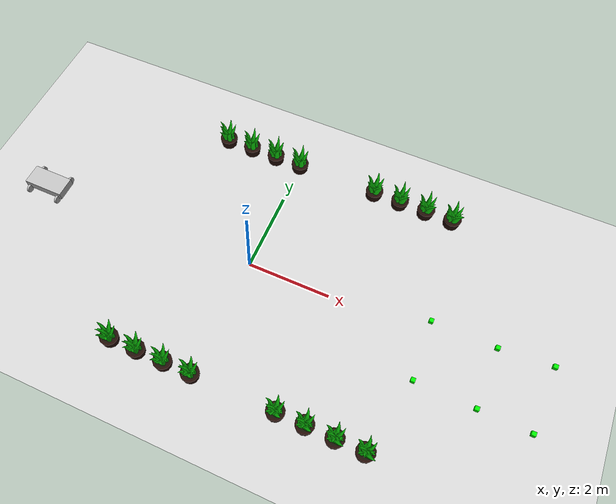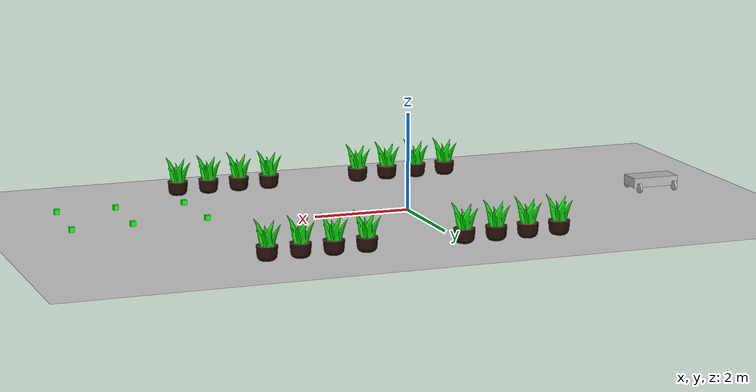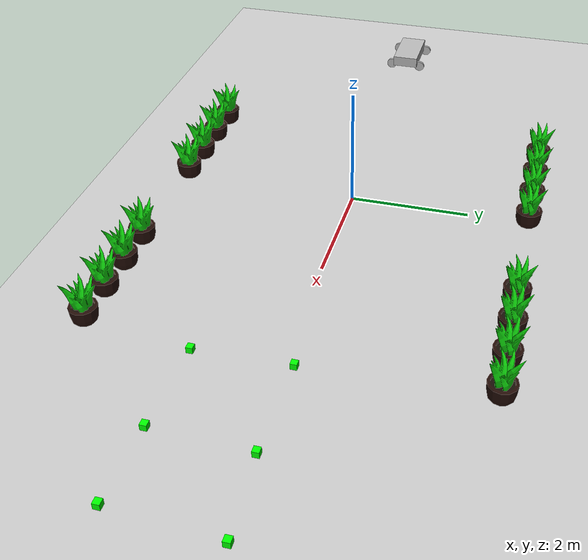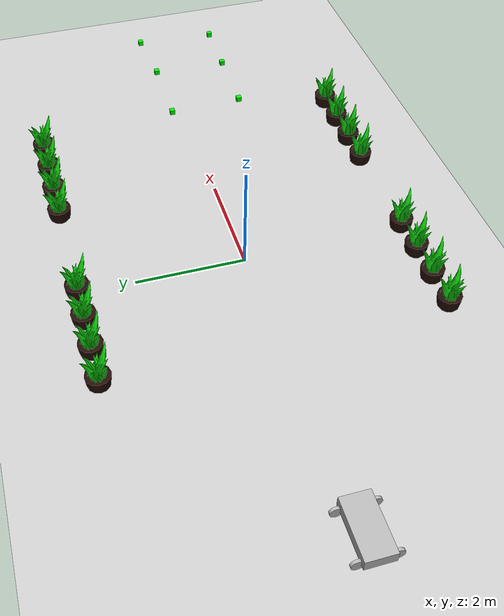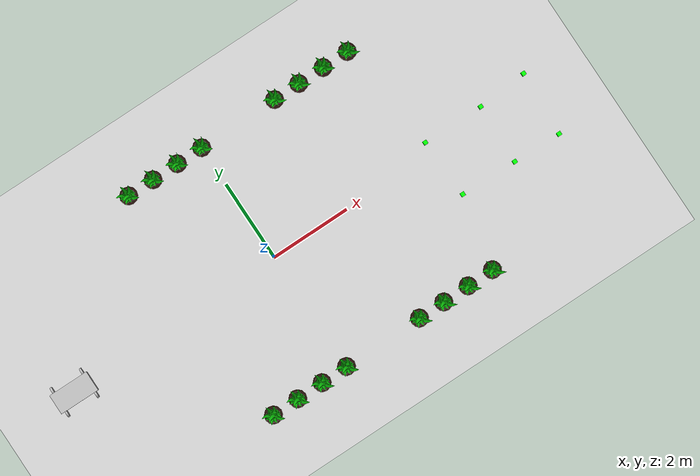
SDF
<sdf version="1.7">
 <world name="default">
  <model name="ground_plane">
   <static>1</static>
   <link name="link">
    <collision name="collision">
     <geometry><plane><normal>0 0 1</normal><size>100 100</size></plane></geometry>
     <surface><friction><ode><mu>100</mu><mu2>50</mu2></ode></friction></surface>
    </collision>
    <visual name="visual">
     <cast_shadows>0</cast_shadows>
     <geometry><plane><normal>0 0 1</normal><size>100 100</size></plane></geometry>
     <material>
      <script><uri>file://media/materials/scripts/gazebo.material</uri><name>Gazebo/Grey</name></script>
     </material>
    </visual>
   </link>
  </model>
  <light name="sun" type="directional">
   <pose>0 0 10 0 -0 0</pose>
   <diffuse>0.8 0.8 0.8 1</diffuse>
   <specular>0.2 0.2 0.2 1</specular>
   <attenuation>
    <range>1000</range>
    <constant>0.9</constant>
    <linear>0.01</linear>
    <quadratic>0.001</quadratic>
   </attenuation>
   <direction>-0.5 0.1 -0.9</direction>
   <spot><inner_angle>0</inner_angle><outer_angle>0</outer_angle><falloff>0</falloff></spot>
  </light>
  <model name="robot">
   <link name="base_link">
    <inertial>
     <mass>5</mass>
     <inertia><ixx>0.1</ixx><ixy>0</ixy><ixz>0</ixz><iyy>0.1</iyy><iyz>0</iyz><izz>0.1</izz></inertia>
    </inertial>
    <collision name="base_link_collision"><geometry><box><size>1 0.5 0.2</size></box></geometry></collision>
    <visual name="base_link_visual"><geometry><box><size>1 0.5 0.2</size></box></geometry></visual>
   </link>
   <joint name="front_left_joint" type="revolute">
    <pose relative_to="base_link">0.4 0.3 -0.1 3.14159 1.57079 3.14159</pose>
    <parent>base_link</parent>
    <child>front_left_wheel</child>
    <axis>
     <xyz>0 0 1</xyz>
     <limit><lower>-1e+16</lower><upper>1e+16</upper></limit>
     <dynamics><spring_reference>0</spring_reference><spring_stiffness>0</spring_stiffness></dynamics>
    </axis>
   </joint>
   <link name="front_left_wheel">
    <pose relative_to="front_left_joint">0 0 0 0 -0 0</pose>
    <inertial>
     <mass>1</mass>
     <inertia><ixx>0.01</ixx><ixy>0</ixy><ixz>0</ixz><iyy>0.01</iyy><iyz>0</iyz><izz>0.01</izz></inertia>
    </inertial>
    <collision name="front_left_wheel_collision">
     <geometry><cylinder><length>0.05</length><radius>0.1</radius></cylinder></geometry>
    </collision>
    <visual name="front_left_wheel_visual">
     <geometry><cylinder><length>0.05</length><radius>0.1</radius></cylinder></geometry>
    </visual>
   </link>
   <joint name="front_right_joint" type="revolute">
    <pose relative_to="base_link">0.4 -0.3 -0.1 3.14159 1.57079 3.14159</pose>
    <parent>base_link</parent>
    <child>front_right_wheel</child>
    <axis>
     <xyz>0 0 1</xyz>
     <limit><lower>-1e+16</lower><upper>1e+16</upper></limit>
     <dynamics><spring_reference>0</spring_reference><spring_stiffness>0</spring_stiffness></dynamics>
    </axis>
   </joint>
   <link name="front_right_wheel">
    <pose relative_to="front_right_joint">0 0 0 0 -0 0</pose>
    <inertial>
     <mass>1</mass>
     <inertia><ixx>0.01</ixx><ixy>0</ixy><ixz>0</ixz><iyy>0.01</iyy><iyz>0</iyz><izz>0.01</izz></inertia>
    </inertial>
    <collision name="front_right_wheel_collision">
     <geometry><cylinder><length>0.05</length><radius>0.1</radius></cylinder></geometry>
    </collision>
    <visual name="front_right_wheel_visual">
     <geometry><cylinder><length>0.05</length><radius>0.1</radius></cylinder></geometry>
    </visual>
   </link>
   <joint name="rear_left_joint" type="revolute">
    <pose relative_to="base_link">-0.4 0.3 -0.1 3.14159 1.57079 3.14159</pose>
    <parent>base_link</parent>
    <child>rear_left_wheel</child>
    <axis>
     <xyz>0 0 1</xyz>
     <limit><lower>-1e+16</lower><upper>1e+16</upper></limit>
     <dynamics><spring_reference>0</spring_reference><spring_stiffness>0</spring_stiffness></dynamics>
    </axis>
   </joint>
   <link name="rear_left_wheel">
    <pose relative_to="rear_left_joint">0 0 0 0 -0 0</pose>
    <inertial>
     <mass>1</mass>
     <inertia><ixx>0.01</ixx><ixy>0</ixy><ixz>0</ixz><iyy>0.01</iyy><iyz>0</iyz><izz>0.01</izz></inertia>
    </inertial>
    <collision name="rear_left_wheel_collision">
     <geometry><cylinder><length>0.05</length><radius>0.1</radius></cylinder></geometry>
    </collision>
    <visual name="rear_left_wheel_visual">
     <geometry><cylinder><length>0.05</length><radius>0.1</radius></cylinder></geometry>
    </visual>
   </link>
   <joint name="rear_right_joint" type="revolute">
    <pose relative_to="base_link">-0.4 -0.3 -0.1 3.14159 1.57079 3.14159</pose>
    <parent>base_link</parent>
    <child>rear_right_wheel</child>
    <axis>
     <xyz>0 0 1</xyz>
     <limit><lower>-1e+16</lower><upper>1e+16</upper></limit>
     <dynamics><spring_reference>0</spring_reference><spring_stiffness>0</spring_stiffness></dynamics>
    </axis>
   </joint>
   <link name="rear_right_wheel">
    <pose relative_to="rear_right_joint">0 0 0 0 -0 0</pose>
    <inertial>
     <mass>1</mass>
     <inertia><ixx>0.01</ixx><ixy>0</ixy><ixz>0</ixz><iyy>0.01</iyy><iyz>0</iyz><izz>0.01</izz></inertia>
    </inertial>
    <collision name="rear_right_wheel_collision">
     <geometry><cylinder><length>0.05</length><radius>0.1</radius></cylinder></geometry>
    </collision>
    <visual name="rear_right_wheel_visual">
     <geometry><cylinder><length>0.05</length><radius>0.1</radius></cylinder></geometry>
    </visual>
   </link>
   <pose>-5.51912 -0.064594 0.2 0 -0 -0.004341</pose>
  </model>
  <model name="water_sensor_1">
   <static>1</static>
   <link name="sensor_link">
    <visual name="visual">
     <geometry><box><size>0.1 0.1 0.1</size></box></geometry>
     <material><ambient>0 1 0 1</ambient></material>
    </visual>
    <collision name="collision"><geometry><box><size>0.1 0.1 0.1</size></box></geometry></collision>
    <sensor name="water_level_sensor" type="logical_camera">
     <always_on>1</always_on>
     <update_rate>10</update_rate>
     <visualize>1</visualize>
     <logical_camera>
      <near>0.1</near>
      <far>1</far>
      <horizontal_fov>1.5708</horizontal_fov>
      <aspect_ratio>1</aspect_ratio>
     </logical_camera>
    </sensor>
   </link>
   <pose>4.39293 -1.19019 0.25 0 -0 0</pose>
  </model>
  <model name="water_sensor_2">
   <static>1</static>
   <link name="sensor_link">
    <visual name="visual">
     <geometry><box><size>0.1 0.1 0.1</size></box></geometry>
     <material><ambient>0 1 0 1</ambient></material>
    </visual>
    <collision name="collision"><geometry><box><size>0.1 0.1 0.1</size></box></geometry></collision>
    <sensor name="water_level_sensor" type="logical_camera">
     <always_on>1</always_on>
     <update_rate>10</update_rate>
     <visualize>1</visualize>
     <logical_camera>
      <near>0.1</near>
      <far>1</far>
      <horizontal_fov>1.5708</horizontal_fov>
      <aspect_ratio>1</aspect_ratio>
     </logical_camera>
    </sensor>
   </link>
   <pose>5.79997 -1.22534 0.25 0 -0 0</pose>
  </model>
  <model name="water_sensor_3">
   <static>1</static>
   <link name="sensor_link">
    <visual name="visual">
     <geometry><box><size>0.1 0.1 0.1</size></box></geometry>
     <material><ambient>0 1 0 1</ambient></material>
    </visual>
    <collision name="collision"><geometry><box><size>0.1 0.1 0.1</size></box></geometry></collision>
    <sensor name="water_level_sensor" type="logical_camera">
     <always_on>1</always_on>
     <update_rate>10</update_rate>
     <visualize>1</visualize>
     <logical_camera>
      <near>0.1</near>
      <far>1</far>
      <horizontal_fov>1.5708</horizontal_fov>
      <aspect_ratio>1</aspect_ratio>
     </logical_camera>
    </sensor>
   </link>
   <pose>6.99884 -1.25426 0.25 0 -0 0</pose>
  </model>
  <model name="water_sensor_4">
   <static>1</static>
   <link name="sensor_link">
    <visual name="visual">
     <geometry><box><size>0.1 0.1 0.1</size></box></geometry>
     <material><ambient>0 1 0 1</ambient></material>
    </visual>
    <collision name="collision"><geometry><box><size>0.1 0.1 0.1</size></box></geometry></collision>
    <sensor name="water_level_sensor" type="logical_camera">
     <always_on>1</always_on>
     <update_rate>10</update_rate>
     <visualize>1</visualize>
     <logical_camera>
      <near>0.1</near>
      <far>1</far>
      <horizontal_fov>1.5708</horizontal_fov>
      <aspect_ratio>1</aspect_ratio>
     </logical_camera>
    </sensor>
   </link>
   <pose>4.33582 0.270524 0.25 0 -0 0</pose>
  </model>
  <model name="water_sensor_5">
   <static>1</static>
   <link name="sensor_link">
    <visual name="visual">
     <geometry><box><size>0.1 0.1 0.1</size></box></geometry>
     <material><ambient>0 1 0 1</ambient></material>
    </visual>
    <collision name="collision"><geometry><box><size>0.1 0.1 0.1</size></box></geometry></collision>
    <sensor name="water_level_sensor" type="logical_camera">
     <always_on>1</always_on>
     <update_rate>10</update_rate>
     <visualize>1</visualize>
     <logical_camera>
      <near>0.1</near>
      <far>1</far>
      <horizontal_fov>1.5708</horizontal_fov>
      <aspect_ratio>1</aspect_ratio>
     </logical_camera>
    </sensor>
   </link>
   <pose>5.84851 0.256112 0.25 0 -0 0</pose>
  </model>
  <model name="water_sensor_6">
   <static>1</static>
   <link name="sensor_link">
    <visual name="visual">
     <geometry><box><size>0.1 0.1 0.1</size></box></geometry>
     <material><ambient>0 1 0 1</ambient></material>
    </visual>
    <collision name="collision"><geometry><box><size>0.1 0.1 0.1</size></box></geometry></collision>
    <sensor name="water_level_sensor" type="logical_camera">
     <always_on>1</always_on>
     <update_rate>10</update_rate>
     <visualize>1</visualize>
     <logical_camera>
      <near>0.1</near>
      <far>1</far>
      <horizontal_fov>1.5708</horizontal_fov>
      <aspect_ratio>1</aspect_ratio>
     </logical_camera>
    </sensor>
   </link>
   <pose>7.08924 0.347977 0.25 0 -0 0</pose>
  </model>
  <gravity>0 0 -9.8</gravity>
  <magnetic_field>6e-06 2.3e-05 -4.2e-05</magnetic_field>
  <atmosphere type="adiabatic"/>
  <physics type="ode">
   <max_step_size>0.001</max_step_size>
   <real_time_factor>1</real_time_factor>
   <real_time_update_rate>1000</real_time_update_rate>
  </physics>
  <scene><ambient>0.4 0.4 0.4 1</ambient><background>0.7 0.7 0.7 1</background><shadows>1</shadows></scene>
  <audio><device>default</device></audio>
  <spherical_coordinates>
   <surface_model>EARTH_WGS84</surface_model>
   <latitude_deg>0</latitude_deg>
   <longitude_deg>0</longitude_deg>
   <elevation>0</elevation>
   <heading_deg>0</heading_deg>
  </spherical_coordinates>
  <model name="plant_1A">
   <pose>-2 -3 0 0 -0 0</pose>
   <static>1</static>
   <link name="link">
    <visual name="visual">
     <geometry>
      <mesh>
       <uri>file:///home/kyshima/.gazebo/models/plants/meshes/PotPlant.dae</uri>
       <scale>0.2 0.2 0.2</scale>
      </mesh>
     </geometry>
    </visual>
   </link>
  </model>
  <model name="plant_2A">
   <pose>2 -3 0 0 -0 0</pose>
   <static>1</static>
   <link name="link">
    <visual name="visual">
     <geometry>
      <mesh>
       <uri>file:///home/kyshima/.gazebo/models/plants/meshes/PotPlant.dae</uri>
       <scale>0.2 0.2 0.2</scale>
      </mesh>
     </geometry>
    </visual>
   </link>
  </model>
  <model name="plant_3A">
   <pose>-2 3 0 0 -0 0</pose>
   <static>1</static>
   <link name="link">
    <visual name="visual">
     <geometry>
      <mesh>
       <uri>file:///home/kyshima/.gazebo/models/plants/meshes/PotPlant.dae</uri>
       <scale>0.2 0.2 0.2</scale>
      </mesh>
     </geometry>
    </visual>
   </link>
  </model>
  <model name="plant_4A">
   <pose>2 3 0 0 -0 0</pose>
   <static>1</static>
   <link name="link">
    <visual name="visual">
     <geometry>
      <mesh>
       <uri>file:///home/kyshima/.gazebo/models/plants/meshes/PotPlant.dae</uri>
       <scale>0.2 0.2 0.2</scale>
      </mesh>
     </geometry>
    </visual>
   </link>
  </model>
  <model name="plant_1B">
   <pose>-1.333 -3 0 0 -0 0</pose>
   <static>1</static>
   <link name="link">
    <visual name="visual">
     <geometry>
      <mesh>
       <uri>file:///home/kyshima/.gazebo/models/plants/meshes/PotPlant.dae</uri>
       <scale>0.2 0.2 0.2</scale>
      </mesh>
     </geometry>
    </visual>
   </link>
  </model>
  <model name="plant_2B">
   <pose>2.667 -3 0 0 -0 0</pose>
   <static>1</static>
   <link name="link">
    <visual name="visual">
     <geometry>
      <mesh>
       <uri>file:///home/kyshima/.gazebo/models/plants/meshes/PotPlant.dae</uri>
       <scale>0.2 0.2 0.2</scale>
      </mesh>
     </geometry>
    </visual>
   </link>
  </model>
  <model name="plant_3B">
   <pose>-1.333 3 0 0 -0 0</pose>
   <static>1</static>
   <link name="link">
    <visual name="visual">
     <geometry>
      <mesh>
       <uri>file:///home/kyshima/.gazebo/models/plants/meshes/PotPlant.dae</uri>
       <scale>0.2 0.2 0.2</scale>
      </mesh>
     </geometry>
    </visual>
   </link>
  </model>
  <model name="plant_4B">
   <pose>2.667 3 0 0 -0 0</pose>
   <static>1</static>
   <link name="link">
    <visual name="visual">
     <geometry>
      <mesh>
       <uri>file:///home/kyshima/.gazebo/models/plants/meshes/PotPlant.dae</uri>
       <scale>0.2 0.2 0.2</scale>
      </mesh>
     </geometry>
    </visual>
   </link>
  </model>
  <model name="plant_1C">
   <pose>-0.667 -3 0 0 -0 0</pose>
   <static>1</static>
   <link name="link">
    <visual name="visual">
     <geometry>
      <mesh>
       <uri>file:///home/kyshima/.gazebo/models/plants/meshes/PotPlant.dae</uri>
       <scale>0.2 0.2 0.2</scale>
      </mesh>
     </geometry>
    </visual>
   </link>
  </model>
  <model name="plant_2C">
   <pose>3.333 -3 0 0 -0 0</pose>
   <static>1</static>
   <link name="link">
    <visual name="visual">
     <geometry>
      <mesh>
       <uri>file:///home/kyshima/.gazebo/models/plants/meshes/PotPlant.dae</uri>
       <scale>0.2 0.2 0.2</scale>
      </mesh>
     </geometry>
    </visual>
   </link>
  </model>
  <model name="plant_3C">
   <pose>-0.667 3 0 0 -0 0</pose>
   <static>1</static>
   <link name="link">
    <visual name="visual">
     <geometry>
      <mesh>
       <uri>file:///home/kyshima/.gazebo/models/plants/meshes/PotPlant.dae</uri>
       <scale>0.2 0.2 0.2</scale>
      </mesh>
     </geometry>
    </visual>
   </link>
  </model>
  <model name="plant_4C">
   <pose>3.333 3 0 0 -0 0</pose>
   <static>1</static>
   <link name="link">
    <visual name="visual">
     <geometry>
      <mesh>
       <uri>file:///home/kyshima/.gazebo/models/plants/meshes/PotPlant.dae</uri>
       <scale>0.2 0.2 0.2</scale>
      </mesh>
     </geometry>
    </visual>
   </link>
  </model>
  <model name="plant_1D">
   <pose>0 -3 0 0 -0 0</pose>
   <static>1</static>
   <link name="link">
    <visual name="visual">
     <geometry>
      <mesh>
       <uri>file:///home/kyshima/.gazebo/models/plants/meshes/PotPlant.dae</uri>
       <scale>0.2 0.2 0.2</scale>
      </mesh>
     </geometry>
    </visual>
   </link>
  </model>
  <model name="plant_2D">
   <pose>4 -3 0 0 -0 0</pose>
   <static>1</static>
   <link name="link">
    <visual name="visual">
     <geometry>
      <mesh>
       <uri>file:///home/kyshima/.gazebo/models/plants/meshes/PotPlant.dae</uri>
       <scale>0.2 0.2 0.2</scale>
      </mesh>
     </geometry>
    </visual>
   </link>
  </model>
  <model name="plant_3D">
   <pose>0 3 0 0 -0 0</pose>
   <static>1</static>
   <link name="link">
    <visual name="visual">
     <geometry>
      <mesh>
       <uri>file:///home/kyshima/.gazebo/models/plants/meshes/PotPlant.dae</uri>
       <scale>0.2 0.2 0.2</scale>
      </mesh>
     </geometry>
    </visual>
   </link>
  </model>
  <model name="plant_4D">
   <pose>4 3 0 0 -0 0</pose>
   <static>1</static>
   <link name="link">
    <visual name="visual">
     <geometry>
      <mesh>
       <uri>file:///home/kyshima/.gazebo/models/plants/meshes/PotPlant.dae</uri>
       <scale>0.2 0.2 0.2</scale>
      </mesh>
     </geometry>
    </visual>
   </link>
  </model>
 </world>
</sdf>
